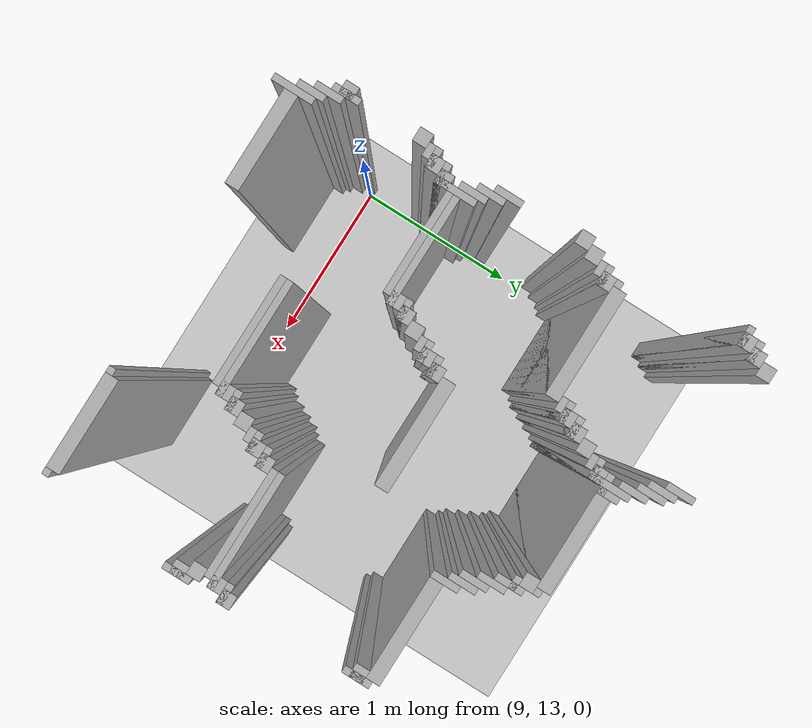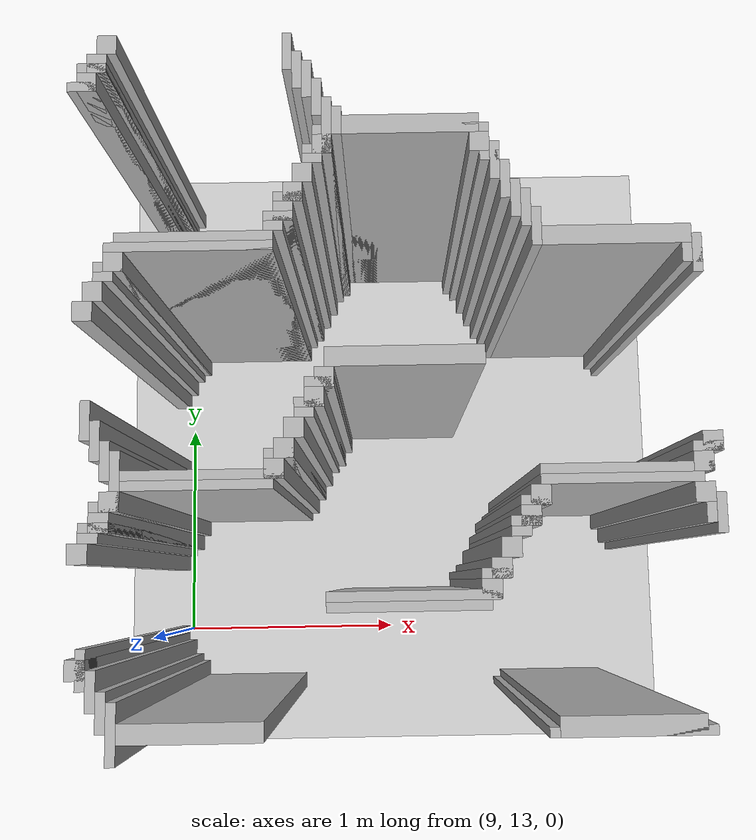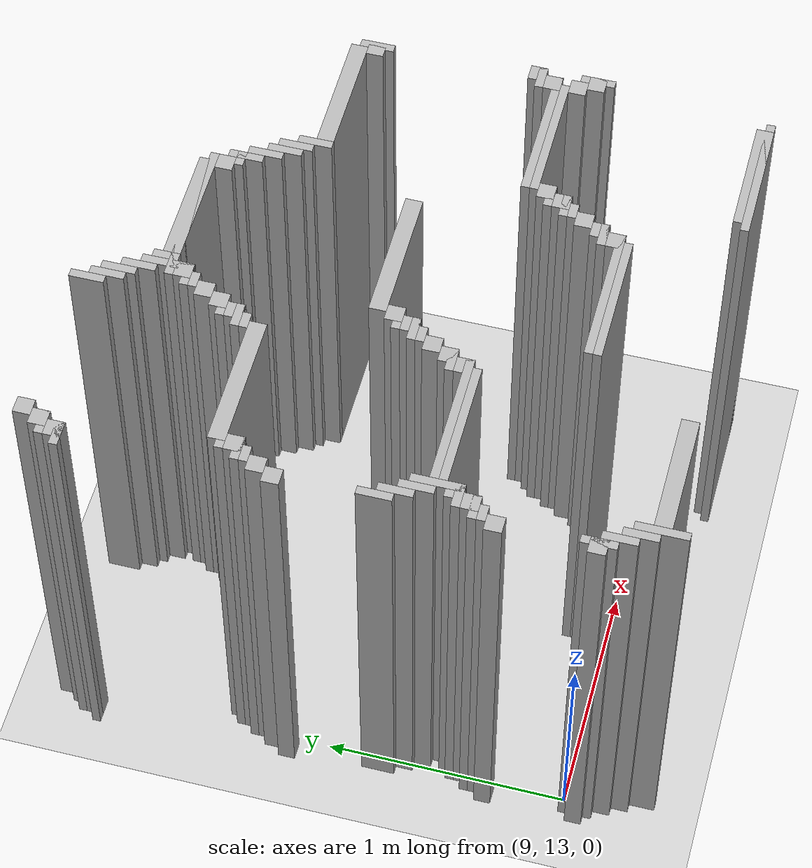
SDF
<sdf version="1.6">
 <world name="slam_world">
  <model name="ground_plane">
   <static>true</static>
   <link name="link">
    <collision name="collision">
     <geometry><plane><normal>0 0 1</normal><size>100 100</size></plane></geometry>
    </collision>
    <visual name="visual">
     <geometry><plane><normal>0 0 1</normal><size>100 100</size></plane></geometry>
     <material>
      <ambient>0.8 0.8 0.8 1</ambient>
      <diffuse>0.8 0.8 0.8 1</diffuse>
      <specular>0.8 0.8 0.8 1</specular>
     </material>
    </visual>
   </link>
  </model>
  <model name="wall_773">
   <static>true</static>
   <pose>9.013921113689095 15.139211136890951 1.0 0 0 0</pose>
   <link name="link">
    <collision name="collision">
     <geometry><box><size>0.06960556844547564 0.06960556844547564 2.0</size></box></geometry>
    </collision>
    <visual name="visual">
     <geometry><box><size>0.06960556844547564 0.06960556844547564 2.0</size></box></geometry>
     <material><ambient>0.5 0.5 0.5 1</ambient><diffuse>0.7 0.7 0.7 1</diffuse></material>
    </visual>
   </link>
  </model>
  <model name="wall_774">
   <static>true</static>
   <pose>9.657772621809745 15.104408352668212 1.0 0 0 0</pose>
   <link name="link">
    <collision name="collision">
     <geometry><box><size>0.03480278422273782 0.13921113689095127 2.0</size></box></geometry>
    </collision>
    <visual name="visual">
     <geometry><box><size>0.03480278422273782 0.13921113689095127 2.0</size></box></geometry>
     <material><ambient>0.5 0.5 0.5 1</ambient><diffuse>0.7 0.7 0.7 1</diffuse></material>
    </visual>
   </link>
  </model>
  <model name="wall_790">
   <static>true</static>
   <pose>8.979118329466356 15.069605568445475 1.0 0 0 0</pose>
   <link name="link">
    <collision name="collision">
     <geometry><box><size>0.06960556844547564 0.06960556844547564 2.0</size></box></geometry>
    </collision>
    <visual name="visual">
     <geometry><box><size>0.06960556844547564 0.06960556844547564 2.0</size></box></geometry>
     <material><ambient>0.5 0.5 0.5 1</ambient><diffuse>0.7 0.7 0.7 1</diffuse></material>
    </visual>
   </link>
  </model>
  <model name="wall_791">
   <static>true</static>
   <pose>9.692575406032482 15.034802784222737 1.0 0 0 0</pose>
   <link name="link">
    <collision name="collision">
     <geometry><box><size>0.03480278422273782 0.13921113689095127 2.0</size></box></geometry>
    </collision>
    <visual name="visual">
     <geometry><box><size>0.03480278422273782 0.13921113689095127 2.0</size></box></geometry>
     <material><ambient>0.5 0.5 0.5 1</ambient><diffuse>0.7 0.7 0.7 1</diffuse></material>
    </visual>
   </link>
  </model>
  <model name="wall_807">
   <static>true</static>
   <pose>8.961716937354987 15.052204176334106 1.0 0 0 0</pose>
   <link name="link">
    <collision name="collision">
     <geometry><box><size>0.10440835266821345 0.03480278422273782 2.0</size></box></geometry>
    </collision>
    <visual name="visual">
     <geometry><box><size>0.10440835266821345 0.03480278422273782 2.0</size></box></geometry>
     <material><ambient>0.5 0.5 0.5 1</ambient><diffuse>0.7 0.7 0.7 1</diffuse></material>
    </visual>
   </link>
  </model>
  <model name="wall_808">
   <static>true</static>
   <pose>9.72737819025522 15.0 1.0 0 0 0</pose>
   <link name="link">
    <collision name="collision">
     <geometry><box><size>0.03480278422273782 0.13921113689095127 2.0</size></box></geometry>
    </collision>
    <visual name="visual">
     <geometry><box><size>0.03480278422273782 0.13921113689095127 2.0</size></box></geometry>
     <material><ambient>0.5 0.5 0.5 1</ambient><diffuse>0.7 0.7 0.7 1</diffuse></material>
    </visual>
   </link>
  </model>
  <model name="wall_821">
   <static>true</static>
   <pose>8.944315545243619 15.0 1.0 0 0 0</pose>
   <link name="link">
    <collision name="collision">
     <geometry><box><size>0.06960556844547564 0.06960556844547564 2.0</size></box></geometry>
    </collision>
    <visual name="visual">
     <geometry><box><size>0.06960556844547564 0.06960556844547564 2.0</size></box></geometry>
     <material><ambient>0.5 0.5 0.5 1</ambient><diffuse>0.7 0.7 0.7 1</diffuse></material>
    </visual>
   </link>
  </model>
  <model name="wall_834">
   <static>true</static>
   <pose>8.92691415313225 14.982598607888631 1.0 0 0 0</pose>
   <link name="link">
    <collision name="collision">
     <geometry><box><size>0.10440835266821345 0.03480278422273782 2.0</size></box></geometry>
    </collision>
    <visual name="visual">
     <geometry><box><size>0.10440835266821345 0.03480278422273782 2.0</size></box></geometry>
     <material><ambient>0.5 0.5 0.5 1</ambient><diffuse>0.7 0.7 0.7 1</diffuse></material>
    </visual>
   </link>
  </model>
  <model name="wall_835">
   <static>true</static>
   <pose>9.762180974477959 14.930394431554523 1.0 0 0 0</pose>
   <link name="link">
    <collision name="collision">
     <geometry><box><size>0.03480278422273782 0.13921113689095127 2.0</size></box></geometry>
    </collision>
    <visual name="visual">
     <geometry><box><size>0.03480278422273782 0.13921113689095127 2.0</size></box></geometry>
     <material><ambient>0.5 0.5 0.5 1</ambient><diffuse>0.7 0.7 0.7 1</diffuse></material>
    </visual>
   </link>
  </model>
  <model name="wall_861">
   <static>true</static>
   <pose>9.796983758700696 14.825986078886311 1.0 0 0 0</pose>
   <link name="link">
    <collision name="collision">
     <geometry><box><size>0.03480278422273782 0.2088167053364269 2.0</size></box></geometry>
    </collision>
    <visual name="visual">
     <geometry><box><size>0.03480278422273782 0.2088167053364269 2.0</size></box></geometry>
     <material><ambient>0.5 0.5 0.5 1</ambient><diffuse>0.7 0.7 0.7 1</diffuse></material>
    </visual>
   </link>
  </model>
  <model name="wall_873">
   <static>true</static>
   <pose>9.831786542923433 14.84338747099768 1.0 0 0 0</pose>
   <link name="link">
    <collision name="collision">
     <geometry><box><size>0.03480278422273782 0.10440835266821345 2.0</size></box></geometry>
    </collision>
    <visual name="visual">
     <geometry><box><size>0.03480278422273782 0.10440835266821345 2.0</size></box></geometry>
     <material><ambient>0.5 0.5 0.5 1</ambient><diffuse>0.7 0.7 0.7 1</diffuse></material>
    </visual>
   </link>
  </model>
  <model name="wall_883">
   <static>true</static>
   <pose>10.092807424593968 14.825986078886311 1.0 0 0 0</pose>
   <link name="link">
    <collision name="collision">
     <geometry><box><size>0.4872389791183295 0.06960556844547564 2.0</size></box></geometry>
    </collision>
    <visual name="visual">
     <geometry><box><size>0.4872389791183295 0.06960556844547564 2.0</size></box></geometry>
     <material><ambient>0.5 0.5 0.5 1</ambient><diffuse>0.7 0.7 0.7 1</diffuse></material>
    </visual>
   </link>
  </model>
  <model name="wall_898">
   <static>true</static>
   <pose>10.058004640371228 14.80858468677494 1.0 0 0 0</pose>
   <link name="link">
    <collision name="collision">
     <geometry><box><size>0.6264501160092807 0.03480278422273782 2.0</size></box></geometry>
    </collision>
    <visual name="visual">
     <geometry><box><size>0.6264501160092807 0.03480278422273782 2.0</size></box></geometry>
     <material><ambient>0.5 0.5 0.5 1</ambient><diffuse>0.7 0.7 0.7 1</diffuse></material>
    </visual>
   </link>
  </model>
  <model name="wall_912">
   <static>true</static>
   <pose>9.779582366589327 14.756380510440835 1.0 0 0 0</pose>
   <link name="link">
    <collision name="collision">
     <geometry><box><size>0.06960556844547564 0.06960556844547564 2.0</size></box></geometry>
    </collision>
    <visual name="visual">
     <geometry><box><size>0.06960556844547564 0.06960556844547564 2.0</size></box></geometry>
     <material><ambient>0.5 0.5 0.5 1</ambient><diffuse>0.7 0.7 0.7 1</diffuse></material>
    </visual>
   </link>
  </model>
  <model name="wall_913">
   <static>true</static>
   <pose>10.336426914153131 14.756380510440835 1.0 0 0 0</pose>
   <link name="link">
    <collision name="collision">
     <geometry><box><size>0.06960556844547564 0.06960556844547564 2.0</size></box></geometry>
    </collision>
    <visual name="visual">
     <geometry><box><size>0.06960556844547564 0.06960556844547564 2.0</size></box></geometry>
     <material><ambient>0.5 0.5 0.5 1</ambient><diffuse>0.7 0.7 0.7 1</diffuse></material>
    </visual>
   </link>
  </model>
  <model name="wall_927">
   <static>true</static>
   <pose>9.762180974477959 14.738979118329466 1.0 0 0 0</pose>
   <link name="link">
    <collision name="collision">
     <geometry><box><size>0.10440835266821345 0.03480278422273782 2.0</size></box></geometry>
    </collision>
    <visual name="visual">
     <geometry><box><size>0.10440835266821345 0.03480278422273782 2.0</size></box></geometry>
     <material><ambient>0.5 0.5 0.5 1</ambient><diffuse>0.7 0.7 0.7 1</diffuse></material>
    </visual>
   </link>
  </model>
  <model name="wall_928">
   <static>true</static>
   <pose>10.38863109048724 14.68677494199536 1.0 0 0 0</pose>
   <link name="link">
    <collision name="collision">
     <geometry><box><size>0.03480278422273782 0.13921113689095127 2.0</size></box></geometry>
    </collision>
    <visual name="visual">
     <geometry><box><size>0.03480278422273782 0.13921113689095127 2.0</size></box></geometry>
     <material><ambient>0.5 0.5 0.5 1</ambient><diffuse>0.7 0.7 0.7 1</diffuse></material>
    </visual>
   </link>
  </model>
  <model name="wall_938">
   <static>true</static>
   <pose>9.744779582366588 14.704176334106728 1.0 0 0 0</pose>
   <link name="link">
    <collision name="collision">
     <geometry><box><size>0.06960556844547564 0.03480278422273782 2.0</size></box></geometry>
    </collision>
    <visual name="visual">
     <geometry><box><size>0.06960556844547564 0.03480278422273782 2.0</size></box></geometry>
     <material><ambient>0.5 0.5 0.5 1</ambient><diffuse>0.7 0.7 0.7 1</diffuse></material>
    </visual>
   </link>
  </model>
  <model name="wall_939">
   <static>true</static>
   <pose>10.37122969837587 14.704176334106728 1.0 0 0 0</pose>
   <link name="link">
    <collision name="collision">
     <geometry><box><size>0.06960556844547564 0.03480278422273782 2.0</size></box></geometry>
    </collision>
    <visual name="visual">
     <geometry><box><size>0.06960556844547564 0.03480278422273782 2.0</size></box></geometry>
     <material><ambient>0.5 0.5 0.5 1</ambient><diffuse>0.7 0.7 0.7 1</diffuse></material>
    </visual>
   </link>
  </model>
  <model name="wall_950">
   <static>true</static>
   <pose>9.70997679814385 14.65197215777262 1.0 0 0 0</pose>
   <link name="link">
    <collision name="collision">
     <geometry><box><size>0.06960556844547564 0.06960556844547564 2.0</size></box></geometry>
    </collision>
    <visual name="visual">
     <geometry><box><size>0.06960556844547564 0.06960556844547564 2.0</size></box></geometry>
     <material><ambient>0.5 0.5 0.5 1</ambient><diffuse>0.7 0.7 0.7 1</diffuse></material>
    </visual>
   </link>
  </model>
  <model name="wall_951">
   <static>true</static>
   <pose>10.423433874709977 14.617169373549883 1.0 0 0 0</pose>
   <link name="link">
    <collision name="collision">
     <geometry><box><size>0.03480278422273782 0.13921113689095127 2.0</size></box></geometry>
    </collision>
    <visual name="visual">
     <geometry><box><size>0.03480278422273782 0.13921113689095127 2.0</size></box></geometry>
     <material><ambient>0.5 0.5 0.5 1</ambient><diffuse>0.7 0.7 0.7 1</diffuse></material>
    </visual>
   </link>
  </model>
  <model name="wall_965">
   <static>true</static>
   <pose>9.675174013921113 14.582366589327146 1.0 0 0 0</pose>
   <link name="link">
    <collision name="collision">
     <geometry><box><size>0.06960556844547564 0.06960556844547564 2.0</size></box></geometry>
    </collision>
    <visual name="visual">
     <geometry><box><size>0.06960556844547564 0.06960556844547564 2.0</size></box></geometry>
     <material><ambient>0.5 0.5 0.5 1</ambient><diffuse>0.7 0.7 0.7 1</diffuse></material>
    </visual>
   </link>
  </model>
  <model name="wall_966">
   <static>true</static>
   <pose>10.458236658932714 14.547563805104408 1.0 0 0 0</pose>
   <link name="link">
    <collision name="collision">
     <geometry><box><size>0.03480278422273782 0.13921113689095127 2.0</size></box></geometry>
    </collision>
    <visual name="visual">
     <geometry><box><size>0.03480278422273782 0.13921113689095127 2.0</size></box></geometry>
     <material><ambient>0.5 0.5 0.5 1</ambient><diffuse>0.7 0.7 0.7 1</diffuse></material>
    </visual>
   </link>
  </model>
  <model name="wall_980">
   <static>true</static>
   <pose>9.657772621809745 14.564965197215777 1.0 0 0 0</pose>
   <link name="link">
    <collision name="collision">
     <geometry><box><size>0.10440835266821345 0.03480278422273782 2.0</size></box></geometry>
    </collision>
    <visual name="visual">
     <geometry><box><size>0.10440835266821345 0.03480278422273782 2.0</size></box></geometry>
     <material><ambient>0.5 0.5 0.5 1</ambient><diffuse>0.7 0.7 0.7 1</diffuse></material>
    </visual>
   </link>
  </model>
  <model name="wall_981">
   <static>true</static>
   <pose>10.493039443155451 14.512761020881669 1.0 0 0 0</pose>
   <link name="link">
    <collision name="collision">
     <geometry><box><size>0.03480278422273782 0.13921113689095127 2.0</size></box></geometry>
    </collision>
    <visual name="visual">
     <geometry><box><size>0.03480278422273782 0.13921113689095127 2.0</size></box></geometry>
     <material><ambient>0.5 0.5 0.5 1</ambient><diffuse>0.7 0.7 0.7 1</diffuse></material>
    </visual>
   </link>
  </model>
  <model name="wall_990">
   <static>true</static>
   <pose>9.640371229698376 14.512761020881669 1.0 0 0 0</pose>
   <link name="link">
    <collision name="collision">
     <geometry><box><size>0.06960556844547564 0.06960556844547564 2.0</size></box></geometry>
    </collision>
    <visual name="visual">
     <geometry><box><size>0.06960556844547564 0.06960556844547564 2.0</size></box></geometry>
     <material><ambient>0.5 0.5 0.5 1</ambient><diffuse>0.7 0.7 0.7 1</diffuse></material>
    </visual>
   </link>
  </model>
  <model name="wall_1001">
   <static>true</static>
   <pose>9.622969837587007 14.4953596287703 1.0 0 0 0</pose>
   <link name="link">
    <collision name="collision">
     <geometry><box><size>0.10440835266821345 0.03480278422273782 2.0</size></box></geometry>
    </collision>
    <visual name="visual">
     <geometry><box><size>0.10440835266821345 0.03480278422273782 2.0</size></box></geometry>
     <material><ambient>0.5 0.5 0.5 1</ambient><diffuse>0.7 0.7 0.7 1</diffuse></material>
    </visual>
   </link>
  </model>
  <model name="wall_1002">
   <static>true</static>
   <pose>10.52784222737819 14.443155452436194 1.0 0 0 0</pose>
   <link name="link">
    <collision name="collision">
     <geometry><box><size>0.03480278422273782 0.13921113689095127 2.0</size></box></geometry>
    </collision>
    <visual name="visual">
     <geometry><box><size>0.03480278422273782 0.13921113689095127 2.0</size></box></geometry>
     <material><ambient>0.5 0.5 0.5 1</ambient><diffuse>0.7 0.7 0.7 1</diffuse></material>
    </visual>
   </link>
  </model>
  <model name="wall_1011">
   <static>true</static>
   <pose>9.605568445475638 14.460556844547563 1.0 0 0 0</pose>
   <link name="link">
    <collision name="collision">
     <geometry><box><size>0.06960556844547564 0.03480278422273782 2.0</size></box></geometry>
    </collision>
    <visual name="visual">
     <geometry><box><size>0.06960556844547564 0.03480278422273782 2.0</size></box></geometry>
     <material><ambient>0.5 0.5 0.5 1</ambient><diffuse>0.7 0.7 0.7 1</diffuse></material>
    </visual>
   </link>
  </model>
  <model name="wall_1021">
   <static>true</static>
   <pose>9.327146171693736 14.408352668213457 1.0 0 0 0</pose>
   <link name="link">
    <collision name="collision">
     <geometry><box><size>0.5568445475638051 0.06960556844547564 2.0</size></box></geometry>
    </collision>
    <visual name="visual">
     <geometry><box><size>0.5568445475638051 0.06960556844547564 2.0</size></box></geometry>
     <material><ambient>0.5 0.5 0.5 1</ambient><diffuse>0.7 0.7 0.7 1</diffuse></material>
    </visual>
   </link>
  </model>
  <model name="wall_1022">
   <static>true</static>
   <pose>10.806264501160092 14.408352668213457 1.0 0 0 0</pose>
   <link name="link">
    <collision name="collision">
     <geometry><box><size>0.5220417633410672 0.06960556844547564 2.0</size></box></geometry>
    </collision>
    <visual name="visual">
     <geometry><box><size>0.5220417633410672 0.06960556844547564 2.0</size></box></geometry>
     <material><ambient>0.5 0.5 0.5 1</ambient><diffuse>0.7 0.7 0.7 1</diffuse></material>
    </visual>
   </link>
  </model>
  <model name="wall_1033">
   <static>true</static>
   <pose>9.309744779582367 14.390951276102088 1.0 0 0 0</pose>
   <link name="link">
    <collision name="collision">
     <geometry><box><size>0.5916473317865429 0.03480278422273782 2.0</size></box></geometry>
    </collision>
    <visual name="visual">
     <geometry><box><size>0.5916473317865429 0.03480278422273782 2.0</size></box></geometry>
     <material><ambient>0.5 0.5 0.5 1</ambient><diffuse>0.7 0.7 0.7 1</diffuse></material>
    </visual>
   </link>
  </model>
  <model name="wall_1034">
   <static>true</static>
   <pose>11.084686774941995 14.33874709976798 1.0 0 0 0</pose>
   <link name="link">
    <collision name="collision">
     <geometry><box><size>0.03480278422273782 0.13921113689095127 2.0</size></box></geometry>
    </collision>
    <visual name="visual">
     <geometry><box><size>0.03480278422273782 0.13921113689095127 2.0</size></box></geometry>
     <material><ambient>0.5 0.5 0.5 1</ambient><diffuse>0.7 0.7 0.7 1</diffuse></material>
    </visual>
   </link>
  </model>
  <model name="wall_1045">
   <static>true</static>
   <pose>9.048723897911833 14.33874709976798 1.0 0 0 0</pose>
   <link name="link">
    <collision name="collision">
     <geometry><box><size>0.06960556844547564 0.06960556844547564 2.0</size></box></geometry>
    </collision>
    <visual name="visual">
     <geometry><box><size>0.06960556844547564 0.06960556844547564 2.0</size></box></geometry>
     <material><ambient>0.5 0.5 0.5 1</ambient><diffuse>0.7 0.7 0.7 1</diffuse></material>
    </visual>
   </link>
  </model>
  <model name="wall_1046">
   <static>true</static>
   <pose>11.067285382830626 14.33874709976798 1.0 0 0 0</pose>
   <link name="link">
    <collision name="collision">
     <geometry><box><size>0.06960556844547564 0.06960556844547564 2.0</size></box></geometry>
    </collision>
    <visual name="visual">
     <geometry><box><size>0.06960556844547564 0.06960556844547564 2.0</size></box></geometry>
     <material><ambient>0.5 0.5 0.5 1</ambient><diffuse>0.7 0.7 0.7 1</diffuse></material>
    </visual>
   </link>
  </model>
  <model name="wall_1058">
   <static>true</static>
   <pose>9.031322505800464 14.321345707656612 1.0 0 0 0</pose>
   <link name="link">
    <collision name="collision">
     <geometry><box><size>0.10440835266821345 0.03480278422273782 2.0</size></box></geometry>
    </collision>
    <visual name="visual">
     <geometry><box><size>0.10440835266821345 0.03480278422273782 2.0</size></box></geometry>
     <material><ambient>0.5 0.5 0.5 1</ambient><diffuse>0.7 0.7 0.7 1</diffuse></material>
    </visual>
   </link>
  </model>
  <model name="wall_1068">
   <static>true</static>
   <pose>9.013921113689095 14.286542923433874 1.0 0 0 0</pose>
   <link name="link">
    <collision name="collision">
     <geometry><box><size>0.06960556844547564 0.03480278422273782 2.0</size></box></geometry>
    </collision>
    <visual name="visual">
     <geometry><box><size>0.06960556844547564 0.03480278422273782 2.0</size></box></geometry>
     <material><ambient>0.5 0.5 0.5 1</ambient><diffuse>0.7 0.7 0.7 1</diffuse></material>
    </visual>
   </link>
  </model>
  <model name="wall_1079">
   <static>true</static>
   <pose>8.979118329466356 14.234338747099768 1.0 0 0 0</pose>
   <link name="link">
    <collision name="collision">
     <geometry><box><size>0.06960556844547564 0.06960556844547564 2.0</size></box></geometry>
    </collision>
    <visual name="visual">
     <geometry><box><size>0.06960556844547564 0.06960556844547564 2.0</size></box></geometry>
     <material><ambient>0.5 0.5 0.5 1</ambient><diffuse>0.7 0.7 0.7 1</diffuse></material>
    </visual>
   </link>
  </model>
  <model name="wall_1092">
   <static>true</static>
   <pose>8.944315545243619 14.164733178654291 1.0 0 0 0</pose>
   <link name="link">
    <collision name="collision">
     <geometry><box><size>0.06960556844547564 0.06960556844547564 2.0</size></box></geometry>
    </collision>
    <visual name="visual">
     <geometry><box><size>0.06960556844547564 0.06960556844547564 2.0</size></box></geometry>
     <material><ambient>0.5 0.5 0.5 1</ambient><diffuse>0.7 0.7 0.7 1</diffuse></material>
    </visual>
   </link>
  </model>
  <model name="wall_1147">
   <static>true</static>
   <pose>10.058004640371228 13.990719257540603 1.0 0 0 0</pose>
   <link name="link">
    <collision name="collision">
     <geometry><box><size>0.5568445475638051 0.06960556844547564 2.0</size></box></geometry>
    </collision>
    <visual name="visual">
     <geometry><box><size>0.5568445475638051 0.06960556844547564 2.0</size></box></geometry>
     <material><ambient>0.5 0.5 0.5 1</ambient><diffuse>0.7 0.7 0.7 1</diffuse></material>
    </visual>
   </link>
  </model>
  <model name="wall_1162">
   <static>true</static>
   <pose>9.779582366589327 13.921113689095128 1.0 0 0 0</pose>
   <link name="link">
    <collision name="collision">
     <geometry><box><size>0.06960556844547564 0.06960556844547564 2.0</size></box></geometry>
    </collision>
    <visual name="visual">
     <geometry><box><size>0.06960556844547564 0.06960556844547564 2.0</size></box></geometry>
     <material><ambient>0.5 0.5 0.5 1</ambient><diffuse>0.7 0.7 0.7 1</diffuse></material>
    </visual>
   </link>
  </model>
  <model name="wall_1178">
   <static>true</static>
   <pose>9.762180974477959 13.903712296983759 1.0 0 0 0</pose>
   <link name="link">
    <collision name="collision">
     <geometry><box><size>0.10440835266821345 0.03480278422273782 2.0</size></box></geometry>
    </collision>
    <visual name="visual">
     <geometry><box><size>0.10440835266821345 0.03480278422273782 2.0</size></box></geometry>
     <material><ambient>0.5 0.5 0.5 1</ambient><diffuse>0.7 0.7 0.7 1</diffuse></material>
    </visual>
   </link>
  </model>
  <model name="wall_1194">
   <static>true</static>
   <pose>9.744779582366588 13.851508120649651 1.0 0 0 0</pose>
   <link name="link">
    <collision name="collision">
     <geometry><box><size>0.06960556844547564 0.06960556844547564 2.0</size></box></geometry>
    </collision>
    <visual name="visual">
     <geometry><box><size>0.06960556844547564 0.06960556844547564 2.0</size></box></geometry>
     <material><ambient>0.5 0.5 0.5 1</ambient><diffuse>0.7 0.7 0.7 1</diffuse></material>
    </visual>
   </link>
  </model>
  <model name="wall_1209">
   <static>true</static>
   <pose>8.961716937354987 13.781902552204176 1.0 0 0 0</pose>
   <link name="link">
    <collision name="collision">
     <geometry><box><size>0.03480278422273782 0.13921113689095127 2.0</size></box></geometry>
    </collision>
    <visual name="visual">
     <geometry><box><size>0.03480278422273782 0.13921113689095127 2.0</size></box></geometry>
     <material><ambient>0.5 0.5 0.5 1</ambient><diffuse>0.7 0.7 0.7 1</diffuse></material>
    </visual>
   </link>
  </model>
  <model name="wall_1210">
   <static>true</static>
   <pose>9.72737819025522 13.834106728538282 1.0 0 0 0</pose>
   <link name="link">
    <collision name="collision">
     <geometry><box><size>0.10440835266821345 0.03480278422273782 2.0</size></box></geometry>
    </collision>
    <visual name="visual">
     <geometry><box><size>0.10440835266821345 0.03480278422273782 2.0</size></box></geometry>
     <material><ambient>0.5 0.5 0.5 1</ambient><diffuse>0.7 0.7 0.7 1</diffuse></material>
    </visual>
   </link>
  </model>
  <model name="wall_1221">
   <static>true</static>
   <pose>9.70997679814385 13.799303944315545 1.0 0 0 0</pose>
   <link name="link">
    <collision name="collision">
     <geometry><box><size>0.06960556844547564 0.03480278422273782 2.0</size></box></geometry>
    </collision>
    <visual name="visual">
     <geometry><box><size>0.06960556844547564 0.03480278422273782 2.0</size></box></geometry>
     <material><ambient>0.5 0.5 0.5 1</ambient><diffuse>0.7 0.7 0.7 1</diffuse></material>
    </visual>
   </link>
  </model>
  <model name="wall_1233">
   <static>true</static>
   <pose>8.996519721577727 13.7122969837587 1.0 0 0 0</pose>
   <link name="link">
    <collision name="collision">
     <geometry><box><size>0.03480278422273782 0.13921113689095127 2.0</size></box></geometry>
    </collision>
    <visual name="visual">
     <geometry><box><size>0.03480278422273782 0.13921113689095127 2.0</size></box></geometry>
     <material><ambient>0.5 0.5 0.5 1</ambient><diffuse>0.7 0.7 0.7 1</diffuse></material>
    </visual>
   </link>
  </model>
  <model name="wall_1234">
   <static>true</static>
   <pose>9.675174013921113 13.747099767981437 1.0 0 0 0</pose>
   <link name="link">
    <collision name="collision">
     <geometry><box><size>0.06960556844547564 0.06960556844547564 2.0</size></box></geometry>
    </collision>
    <visual name="visual">
     <geometry><box><size>0.06960556844547564 0.06960556844547564 2.0</size></box></geometry>
     <material><ambient>0.5 0.5 0.5 1</ambient><diffuse>0.7 0.7 0.7 1</diffuse></material>
    </visual>
   </link>
  </model>
  <model name="wall_1249">
   <static>true</static>
   <pose>9.031322505800464 13.642691415313225 1.0 0 0 0</pose>
   <link name="link">
    <collision name="collision">
     <geometry><box><size>0.03480278422273782 0.13921113689095127 2.0</size></box></geometry>
    </collision>
    <visual name="visual">
     <geometry><box><size>0.03480278422273782 0.13921113689095127 2.0</size></box></geometry>
     <material><ambient>0.5 0.5 0.5 1</ambient><diffuse>0.7 0.7 0.7 1</diffuse></material>
    </visual>
   </link>
  </model>
  <model name="wall_1250">
   <static>true</static>
   <pose>9.640371229698376 13.677494199535962 1.0 0 0 0</pose>
   <link name="link">
    <collision name="collision">
     <geometry><box><size>0.06960556844547564 0.06960556844547564 2.0</size></box></geometry>
    </collision>
    <visual name="visual">
     <geometry><box><size>0.06960556844547564 0.06960556844547564 2.0</size></box></geometry>
     <material><ambient>0.5 0.5 0.5 1</ambient><diffuse>0.7 0.7 0.7 1</diffuse></material>
    </visual>
   </link>
  </model>
  <model name="wall_1251">
   <static>true</static>
   <pose>11.102088167053363 13.677494199535962 1.0 0 0 0</pose>
   <link name="link">
    <collision name="collision">
     <geometry><box><size>0.06960556844547564 0.06960556844547564 2.0</size></box></geometry>
    </collision>
    <visual name="visual">
     <geometry><box><size>0.06960556844547564 0.06960556844547564 2.0</size></box></geometry>
     <material><ambient>0.5 0.5 0.5 1</ambient><diffuse>0.7 0.7 0.7 1</diffuse></material>
    </visual>
   </link>
  </model>
  <model name="wall_1265">
   <static>true</static>
   <pose>9.066125290023201 13.573085846867748 1.0 0 0 0</pose>
   <link name="link">
    <collision name="collision">
     <geometry><box><size>0.03480278422273782 0.2088167053364269 2.0</size></box></geometry>
    </collision>
    <visual name="visual">
     <geometry><box><size>0.03480278422273782 0.2088167053364269 2.0</size></box></geometry>
     <material><ambient>0.5 0.5 0.5 1</ambient><diffuse>0.7 0.7 0.7 1</diffuse></material>
    </visual>
   </link>
  </model>
  <model name="wall_1266">
   <static>true</static>
   <pose>9.622969837587007 13.660092807424594 1.0 0 0 0</pose>
   <link name="link">
    <collision name="collision">
     <geometry><box><size>0.10440835266821345 0.03480278422273782 2.0</size></box></geometry>
    </collision>
    <visual name="visual">
     <geometry><box><size>0.10440835266821345 0.03480278422273782 2.0</size></box></geometry>
     <material><ambient>0.5 0.5 0.5 1</ambient><diffuse>0.7 0.7 0.7 1</diffuse></material>
    </visual>
   </link>
  </model>
  <model name="wall_1267">
   <static>true</static>
   <pose>11.084686774941995 13.660092807424594 1.0 0 0 0</pose>
   <link name="link">
    <collision name="collision">
     <geometry><box><size>0.10440835266821345 0.03480278422273782 2.0</size></box></geometry>
    </collision>
    <visual name="visual">
     <geometry><box><size>0.10440835266821345 0.03480278422273782 2.0</size></box></geometry>
     <material><ambient>0.5 0.5 0.5 1</ambient><diffuse>0.7 0.7 0.7 1</diffuse></material>
    </visual>
   </link>
  </model>
  <model name="wall_1277">
   <static>true</static>
   <pose>9.605568445475638 13.607888631090487 1.0 0 0 0</pose>
   <link name="link">
    <collision name="collision">
     <geometry><box><size>0.06960556844547564 0.06960556844547564 2.0</size></box></geometry>
    </collision>
    <visual name="visual">
     <geometry><box><size>0.06960556844547564 0.06960556844547564 2.0</size></box></geometry>
     <material><ambient>0.5 0.5 0.5 1</ambient><diffuse>0.7 0.7 0.7 1</diffuse></material>
    </visual>
   </link>
  </model>
  <model name="wall_1278">
   <static>true</static>
   <pose>11.067285382830626 13.607888631090487 1.0 0 0 0</pose>
   <link name="link">
    <collision name="collision">
     <geometry><box><size>0.06960556844547564 0.06960556844547564 2.0</size></box></geometry>
    </collision>
    <visual name="visual">
     <geometry><box><size>0.06960556844547564 0.06960556844547564 2.0</size></box></geometry>
     <material><ambient>0.5 0.5 0.5 1</ambient><diffuse>0.7 0.7 0.7 1</diffuse></material>
    </visual>
   </link>
  </model>
  <model name="wall_1289">
   <static>true</static>
   <pose>9.361948955916473 13.590487238979117 1.0 0 0 0</pose>
   <link name="link">
    <collision name="collision">
     <geometry><box><size>0.5568445475638051 0.03480278422273782 2.0</size></box></geometry>
    </collision>
    <visual name="visual">
     <geometry><box><size>0.5568445475638051 0.03480278422273782 2.0</size></box></geometry>
     <material><ambient>0.5 0.5 0.5 1</ambient><diffuse>0.7 0.7 0.7 1</diffuse></material>
    </visual>
   </link>
  </model>
  <model name="wall_1290">
   <static>true</static>
   <pose>10.806264501160092 13.590487238979117 1.0 0 0 0</pose>
   <link name="link">
    <collision name="collision">
     <geometry><box><size>0.5916473317865429 0.03480278422273782 2.0</size></box></geometry>
    </collision>
    <visual name="visual">
     <geometry><box><size>0.5916473317865429 0.03480278422273782 2.0</size></box></geometry>
     <material><ambient>0.5 0.5 0.5 1</ambient><diffuse>0.7 0.7 0.7 1</diffuse></material>
    </visual>
   </link>
  </model>
  <model name="wall_1300">
   <static>true</static>
   <pose>9.344547563805104 13.55568445475638 1.0 0 0 0</pose>
   <link name="link">
    <collision name="collision">
     <geometry><box><size>0.5220417633410672 0.03480278422273782 2.0</size></box></geometry>
    </collision>
    <visual name="visual">
     <geometry><box><size>0.5220417633410672 0.03480278422273782 2.0</size></box></geometry>
     <material><ambient>0.5 0.5 0.5 1</ambient><diffuse>0.7 0.7 0.7 1</diffuse></material>
    </visual>
   </link>
  </model>
  <model name="wall_1301">
   <static>true</static>
   <pose>10.788863109048723 13.55568445475638 1.0 0 0 0</pose>
   <link name="link">
    <collision name="collision">
     <geometry><box><size>0.5568445475638051 0.03480278422273782 2.0</size></box></geometry>
    </collision>
    <visual name="visual">
     <geometry><box><size>0.5568445475638051 0.03480278422273782 2.0</size></box></geometry>
     <material><ambient>0.5 0.5 0.5 1</ambient><diffuse>0.7 0.7 0.7 1</diffuse></material>
    </visual>
   </link>
  </model>
  <model name="wall_1311">
   <static>true</static>
   <pose>9.048723897911833 13.503480278422273 1.0 0 0 0</pose>
   <link name="link">
    <collision name="collision">
     <geometry><box><size>0.06960556844547564 0.06960556844547564 2.0</size></box></geometry>
    </collision>
    <visual name="visual">
     <geometry><box><size>0.06960556844547564 0.06960556844547564 2.0</size></box></geometry>
     <material><ambient>0.5 0.5 0.5 1</ambient><diffuse>0.7 0.7 0.7 1</diffuse></material>
    </visual>
   </link>
  </model>
  <model name="wall_1312">
   <static>true</static>
   <pose>10.51044083526682 13.503480278422273 1.0 0 0 0</pose>
   <link name="link">
    <collision name="collision">
     <geometry><box><size>0.06960556844547564 0.06960556844547564 2.0</size></box></geometry>
    </collision>
    <visual name="visual">
     <geometry><box><size>0.06960556844547564 0.06960556844547564 2.0</size></box></geometry>
     <material><ambient>0.5 0.5 0.5 1</ambient><diffuse>0.7 0.7 0.7 1</diffuse></material>
    </visual>
   </link>
  </model>
  <model name="wall_1313">
   <static>true</static>
   <pose>11.067285382830626 13.503480278422273 1.0 0 0 0</pose>
   <link name="link">
    <collision name="collision">
     <geometry><box><size>0.06960556844547564 0.06960556844547564 2.0</size></box></geometry>
    </collision>
    <visual name="visual">
     <geometry><box><size>0.06960556844547564 0.06960556844547564 2.0</size></box></geometry>
     <material><ambient>0.5 0.5 0.5 1</ambient><diffuse>0.7 0.7 0.7 1</diffuse></material>
    </visual>
   </link>
  </model>
  <model name="wall_1325">
   <static>true</static>
   <pose>9.031322505800464 13.486078886310905 1.0 0 0 0</pose>
   <link name="link">
    <collision name="collision">
     <geometry><box><size>0.10440835266821345 0.03480278422273782 2.0</size></box></geometry>
    </collision>
    <visual name="visual">
     <geometry><box><size>0.10440835266821345 0.03480278422273782 2.0</size></box></geometry>
     <material><ambient>0.5 0.5 0.5 1</ambient><diffuse>0.7 0.7 0.7 1</diffuse></material>
    </visual>
   </link>
  </model>
  <model name="wall_1326">
   <static>true</static>
   <pose>10.493039443155451 13.486078886310905 1.0 0 0 0</pose>
   <link name="link">
    <collision name="collision">
     <geometry><box><size>0.10440835266821345 0.03480278422273782 2.0</size></box></geometry>
    </collision>
    <visual name="visual">
     <geometry><box><size>0.10440835266821345 0.03480278422273782 2.0</size></box></geometry>
     <material><ambient>0.5 0.5 0.5 1</ambient><diffuse>0.7 0.7 0.7 1</diffuse></material>
    </visual>
   </link>
  </model>
  <model name="wall_1327">
   <static>true</static>
   <pose>11.119489559164732 13.433874709976797 1.0 0 0 0</pose>
   <link name="link">
    <collision name="collision">
     <geometry><box><size>0.03480278422273782 0.13921113689095127 2.0</size></box></geometry>
    </collision>
    <visual name="visual">
     <geometry><box><size>0.03480278422273782 0.13921113689095127 2.0</size></box></geometry>
     <material><ambient>0.5 0.5 0.5 1</ambient><diffuse>0.7 0.7 0.7 1</diffuse></material>
    </visual>
   </link>
  </model>
  <model name="wall_1339">
   <static>true</static>
   <pose>9.013921113689095 13.433874709976797 1.0 0 0 0</pose>
   <link name="link">
    <collision name="collision">
     <geometry><box><size>0.06960556844547564 0.06960556844547564 2.0</size></box></geometry>
    </collision>
    <visual name="visual">
     <geometry><box><size>0.06960556844547564 0.06960556844547564 2.0</size></box></geometry>
     <material><ambient>0.5 0.5 0.5 1</ambient><diffuse>0.7 0.7 0.7 1</diffuse></material>
    </visual>
   </link>
  </model>
  <model name="wall_1340">
   <static>true</static>
   <pose>10.475638051044083 13.433874709976797 1.0 0 0 0</pose>
   <link name="link">
    <collision name="collision">
     <geometry><box><size>0.06960556844547564 0.06960556844547564 2.0</size></box></geometry>
    </collision>
    <visual name="visual">
     <geometry><box><size>0.06960556844547564 0.06960556844547564 2.0</size></box></geometry>
     <material><ambient>0.5 0.5 0.5 1</ambient><diffuse>0.7 0.7 0.7 1</diffuse></material>
    </visual>
   </link>
  </model>
  <model name="wall_1341">
   <static>true</static>
   <pose>11.102088167053363 13.433874709976797 1.0 0 0 0</pose>
   <link name="link">
    <collision name="collision">
     <geometry><box><size>0.06960556844547564 0.06960556844547564 2.0</size></box></geometry>
    </collision>
    <visual name="visual">
     <geometry><box><size>0.06960556844547564 0.06960556844547564 2.0</size></box></geometry>
     <material><ambient>0.5 0.5 0.5 1</ambient><diffuse>0.7 0.7 0.7 1</diffuse></material>
    </visual>
   </link>
  </model>
  <model name="wall_1353">
   <static>true</static>
   <pose>8.996519721577727 13.416473317865428 1.0 0 0 0</pose>
   <link name="link">
    <collision name="collision">
     <geometry><box><size>0.10440835266821345 0.03480278422273782 2.0</size></box></geometry>
    </collision>
    <visual name="visual">
     <geometry><box><size>0.10440835266821345 0.03480278422273782 2.0</size></box></geometry>
     <material><ambient>0.5 0.5 0.5 1</ambient><diffuse>0.7 0.7 0.7 1</diffuse></material>
    </visual>
   </link>
  </model>
  <model name="wall_1354">
   <static>true</static>
   <pose>10.458236658932714 13.416473317865428 1.0 0 0 0</pose>
   <link name="link">
    <collision name="collision">
     <geometry><box><size>0.10440835266821345 0.03480278422273782 2.0</size></box></geometry>
    </collision>
    <visual name="visual">
     <geometry><box><size>0.10440835266821345 0.03480278422273782 2.0</size></box></geometry>
     <material><ambient>0.5 0.5 0.5 1</ambient><diffuse>0.7 0.7 0.7 1</diffuse></material>
    </visual>
   </link>
  </model>
  <model name="wall_1364">
   <static>true</static>
   <pose>8.979118329466356 13.38167053364269 1.0 0 0 0</pose>
   <link name="link">
    <collision name="collision">
     <geometry><box><size>0.06960556844547564 0.03480278422273782 2.0</size></box></geometry>
    </collision>
    <visual name="visual">
     <geometry><box><size>0.06960556844547564 0.03480278422273782 2.0</size></box></geometry>
     <material><ambient>0.5 0.5 0.5 1</ambient><diffuse>0.7 0.7 0.7 1</diffuse></material>
    </visual>
   </link>
  </model>
  <model name="wall_1365">
   <static>true</static>
   <pose>10.440835266821345 13.38167053364269 1.0 0 0 0</pose>
   <link name="link">
    <collision name="collision">
     <geometry><box><size>0.06960556844547564 0.03480278422273782 2.0</size></box></geometry>
    </collision>
    <visual name="visual">
     <geometry><box><size>0.06960556844547564 0.03480278422273782 2.0</size></box></geometry>
     <material><ambient>0.5 0.5 0.5 1</ambient><diffuse>0.7 0.7 0.7 1</diffuse></material>
    </visual>
   </link>
  </model>
  <model name="wall_1376">
   <static>true</static>
   <pose>8.944315545243619 13.329466357308585 1.0 0 0 0</pose>
   <link name="link">
    <collision name="collision">
     <geometry><box><size>0.06960556844547564 0.06960556844547564 2.0</size></box></geometry>
    </collision>
    <visual name="visual">
     <geometry><box><size>0.06960556844547564 0.06960556844547564 2.0</size></box></geometry>
     <material><ambient>0.5 0.5 0.5 1</ambient><diffuse>0.7 0.7 0.7 1</diffuse></material>
    </visual>
   </link>
  </model>
  <model name="wall_1377">
   <static>true</static>
   <pose>10.406032482598608 13.329466357308585 1.0 0 0 0</pose>
   <link name="link">
    <collision name="collision">
     <geometry><box><size>0.06960556844547564 0.06960556844547564 2.0</size></box></geometry>
    </collision>
    <visual name="visual">
     <geometry><box><size>0.06960556844547564 0.06960556844547564 2.0</size></box></geometry>
     <material><ambient>0.5 0.5 0.5 1</ambient><diffuse>0.7 0.7 0.7 1</diffuse></material>
    </visual>
   </link>
  </model>
  <model name="wall_1391">
   <static>true</static>
   <pose>10.37122969837587 13.259860788863108 1.0 0 0 0</pose>
   <link name="link">
    <collision name="collision">
     <geometry><box><size>0.06960556844547564 0.06960556844547564 2.0</size></box></geometry>
    </collision>
    <visual name="visual">
     <geometry><box><size>0.06960556844547564 0.06960556844547564 2.0</size></box></geometry>
     <material><ambient>0.5 0.5 0.5 1</ambient><diffuse>0.7 0.7 0.7 1</diffuse></material>
    </visual>
   </link>
  </model>
  <model name="wall_1405">
   <static>true</static>
   <pose>10.3538283062645 13.24245939675174 1.0 0 0 0</pose>
   <link name="link">
    <collision name="collision">
     <geometry><box><size>0.10440835266821345 0.03480278422273782 2.0</size></box></geometry>
    </collision>
    <visual name="visual">
     <geometry><box><size>0.10440835266821345 0.03480278422273782 2.0</size></box></geometry>
     <material><ambient>0.5 0.5 0.5 1</ambient><diffuse>0.7 0.7 0.7 1</diffuse></material>
    </visual>
   </link>
  </model>
  <model name="wall_1416">
   <static>true</static>
   <pose>10.336426914153131 13.190255220417633 1.0 0 0 0</pose>
   <link name="link">
    <collision name="collision">
     <geometry><box><size>0.06960556844547564 0.06960556844547564 2.0</size></box></geometry>
    </collision>
    <visual name="visual">
     <geometry><box><size>0.06960556844547564 0.06960556844547564 2.0</size></box></geometry>
     <material><ambient>0.5 0.5 0.5 1</ambient><diffuse>0.7 0.7 0.7 1</diffuse></material>
    </visual>
   </link>
  </model>
  <model name="wall_1427">
   <static>true</static>
   <pose>10.075406032482599 13.172853828306264 1.0 0 0 0</pose>
   <link name="link">
    <collision name="collision">
     <geometry><box><size>0.5916473317865429 0.03480278422273782 2.0</size></box></geometry>
    </collision>
    <visual name="visual">
     <geometry><box><size>0.5916473317865429 0.03480278422273782 2.0</size></box></geometry>
     <material><ambient>0.5 0.5 0.5 1</ambient><diffuse>0.7 0.7 0.7 1</diffuse></material>
    </visual>
   </link>
  </model>
  <model name="wall_1438">
   <static>true</static>
   <pose>10.058004640371228 13.138051044083527 1.0 0 0 0</pose>
   <link name="link">
    <collision name="collision">
     <geometry><box><size>0.5568445475638051 0.03480278422273782 2.0</size></box></geometry>
    </collision>
    <visual name="visual">
     <geometry><box><size>0.5568445475638051 0.03480278422273782 2.0</size></box></geometry>
     <material><ambient>0.5 0.5 0.5 1</ambient><diffuse>0.7 0.7 0.7 1</diffuse></material>
    </visual>
   </link>
  </model>
  <model name="wall_1481">
   <static>true</static>
   <pose>8.961716937354987 12.946635730858468 1.0 0 0 0</pose>
   <link name="link">
    <collision name="collision">
     <geometry><box><size>0.03480278422273782 0.13921113689095127 2.0</size></box></geometry>
    </collision>
    <visual name="visual">
     <geometry><box><size>0.03480278422273782 0.13921113689095127 2.0</size></box></geometry>
     <material><ambient>0.5 0.5 0.5 1</ambient><diffuse>0.7 0.7 0.7 1</diffuse></material>
    </visual>
   </link>
  </model>
  <model name="wall_1493">
   <static>true</static>
   <pose>8.944315545243619 12.946635730858468 1.0 0 0 0</pose>
   <link name="link">
    <collision name="collision">
     <geometry><box><size>0.06960556844547564 0.06960556844547564 2.0</size></box></geometry>
    </collision>
    <visual name="visual">
     <geometry><box><size>0.06960556844547564 0.06960556844547564 2.0</size></box></geometry>
     <material><ambient>0.5 0.5 0.5 1</ambient><diffuse>0.7 0.7 0.7 1</diffuse></material>
    </visual>
   </link>
  </model>
  <model name="wall_1505">
   <static>true</static>
   <pose>8.996519721577727 12.877030162412993 1.0 0 0 0</pose>
   <link name="link">
    <collision name="collision">
     <geometry><box><size>0.03480278422273782 0.13921113689095127 2.0</size></box></geometry>
    </collision>
    <visual name="visual">
     <geometry><box><size>0.03480278422273782 0.13921113689095127 2.0</size></box></geometry>
     <material><ambient>0.5 0.5 0.5 1</ambient><diffuse>0.7 0.7 0.7 1</diffuse></material>
    </visual>
   </link>
  </model>
  <model name="wall_1523">
   <static>true</static>
   <pose>9.031322505800464 12.807424593967516 1.0 0 0 0</pose>
   <link name="link">
    <collision name="collision">
     <geometry><box><size>0.03480278422273782 0.13921113689095127 2.0</size></box></geometry>
    </collision>
    <visual name="visual">
     <geometry><box><size>0.03480278422273782 0.13921113689095127 2.0</size></box></geometry>
     <material><ambient>0.5 0.5 0.5 1</ambient><diffuse>0.7 0.7 0.7 1</diffuse></material>
    </visual>
   </link>
  </model>
  <model name="wall_1535">
   <static>true</static>
   <pose>9.066125290023201 12.737819025522041 1.0 0 0 0</pose>
   <link name="link">
    <collision name="collision">
     <geometry><box><size>0.03480278422273782 0.2088167053364269 2.0</size></box></geometry>
    </collision>
    <visual name="visual">
     <geometry><box><size>0.03480278422273782 0.2088167053364269 2.0</size></box></geometry>
     <material><ambient>0.5 0.5 0.5 1</ambient><diffuse>0.7 0.7 0.7 1</diffuse></material>
    </visual>
   </link>
  </model>
  <model name="wall_1553">
   <static>true</static>
   <pose>9.327146171693736 12.737819025522041 1.0 0 0 0</pose>
   <link name="link">
    <collision name="collision">
     <geometry><box><size>0.4872389791183295 0.06960556844547564 2.0</size></box></geometry>
    </collision>
    <visual name="visual">
     <geometry><box><size>0.4872389791183295 0.06960556844547564 2.0</size></box></geometry>
     <material><ambient>0.5 0.5 0.5 1</ambient><diffuse>0.7 0.7 0.7 1</diffuse></material>
    </visual>
   </link>
  </model>
  <model name="wall_1554">
   <static>true</static>
   <pose>10.788863109048723 12.737819025522041 1.0 0 0 0</pose>
   <link name="link">
    <collision name="collision">
     <geometry><box><size>0.4872389791183295 0.06960556844547564 2.0</size></box></geometry>
    </collision>
    <visual name="visual">
     <geometry><box><size>0.4872389791183295 0.06960556844547564 2.0</size></box></geometry>
     <material><ambient>0.5 0.5 0.5 1</ambient><diffuse>0.7 0.7 0.7 1</diffuse></material>
    </visual>
   </link>
  </model>
  <model name="wall_1566">
   <static>true</static>
   <pose>10.788863109048723 12.720417633410673 1.0 0 0 0</pose>
   <link name="link">
    <collision name="collision">
     <geometry><box><size>0.5568445475638051 0.03480278422273782 2.0</size></box></geometry>
    </collision>
    <visual name="visual">
     <geometry><box><size>0.5568445475638051 0.03480278422273782 2.0</size></box></geometry>
     <material><ambient>0.5 0.5 0.5 1</ambient><diffuse>0.7 0.7 0.7 1</diffuse></material>
    </visual>
   </link>
  </model>
 </world>
</sdf>
